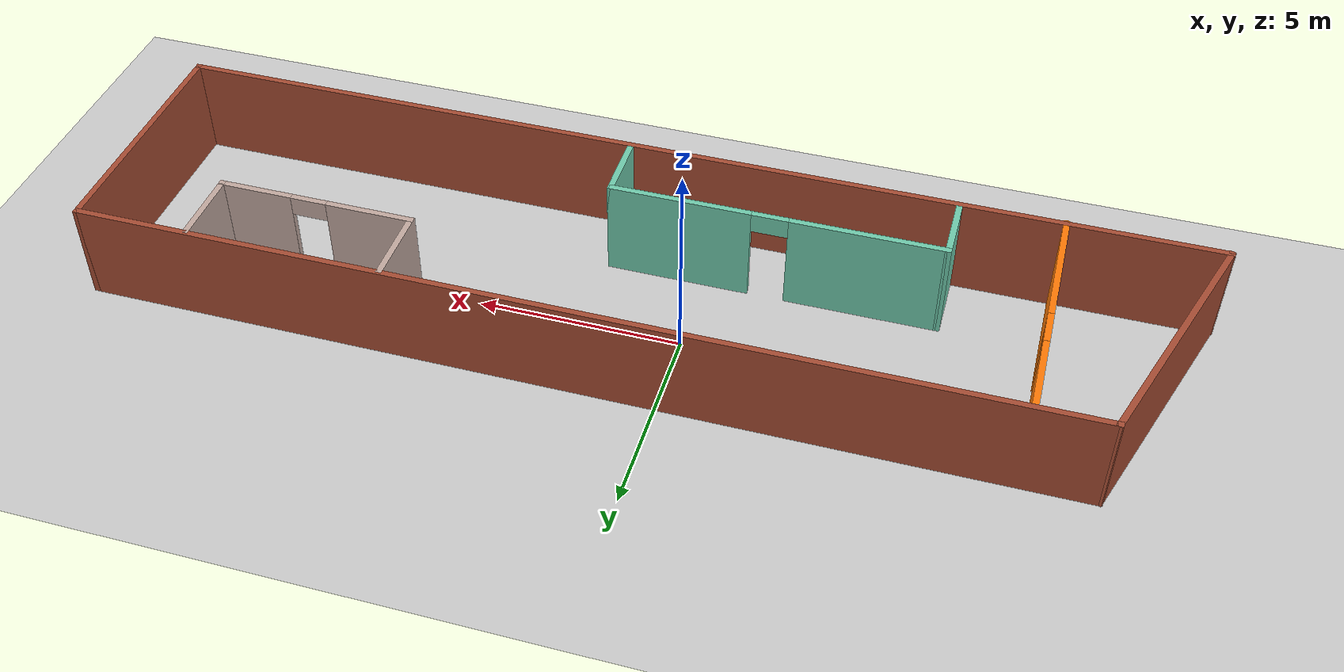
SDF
<sdf version="1.7">
 <world name="default">
  <light name="sun" type="directional">
   <pose>0 0 10 0 -0 0</pose>
   <diffuse>0.8 0.8 0.8 1</diffuse>
   <specular>0.2 0.2 0.2 1</specular>
   <attenuation>
    <range>1000</range>
    <constant>0.9</constant>
    <linear>0.01</linear>
    <quadratic>0.001</quadratic>
   </attenuation>
   <direction>-0.5 0.1 -0.9</direction>
   <spot><inner_angle>0</inner_angle><outer_angle>0</outer_angle><falloff>0</falloff></spot>
  </light>
  <model name="ground_plane">
   <static>1</static>
   <link name="link">
    <collision name="collision">
     <geometry><plane><normal>0 0 1</normal><size>100 100</size></plane></geometry>
     <surface>
      <contact><collide_bitmask>65535</collide_bitmask></contact>
      <friction><ode><mu>100</mu><mu2>50</mu2></ode></friction>
     </surface>
    </collision>
    <visual name="visual">
     <cast_shadows>0</cast_shadows>
     <geometry><plane><normal>0 0 1</normal><size>100 100</size></plane></geometry>
     <material>
      <script><uri>file://media/materials/scripts/gazebo.material</uri><name>Gazebo/Grey</name></script>
     </material>
    </visual>
   </link>
  </model>
  <gravity>0 0 -9.8</gravity>
  <magnetic_field>6e-06 2.3e-05 -4.2e-05</magnetic_field>
  <atmosphere type="adiabatic"/>
  <physics type="ode">
   <max_step_size>0.001</max_step_size>
   <real_time_factor>1</real_time_factor>
   <real_time_update_rate>1000</real_time_update_rate>
  </physics>
  <scene><ambient>0.4 0.4 0.4 1</ambient><background>0.7 0.7 0.7 1</background><shadows>1</shadows></scene>
  <spherical_coordinates>
   <surface_model>EARTH_WGS84</surface_model>
   <latitude_deg>0</latitude_deg>
   <longitude_deg>0</longitude_deg>
   <elevation>0</elevation>
   <heading_deg>0</heading_deg>
  </spherical_coordinates>
  <model name="Untitled">
   <pose>1.08545 0.084116 0 0 -0 0</pose>
   <link name="Wall_0">
    <collision name="Wall_0_Collision">
     <geometry><box><size>24.25 0.15 2.5</size></box></geometry>
     <pose>0 0 1.25 0 -0 0</pose>
    </collision>
    <visual name="Wall_0_Visual">
     <pose>0 0 1.25 0 -0 0</pose>
     <geometry><box><size>24.25 0.15 2.5</size></box></geometry>
     <material>
      <script><uri>file://media/materials/scripts/gazebo.material</uri><name>Gazebo/Bricks</name></script>
      <ambient>1 1 1 1</ambient>
     </material>
     <meta><layer>0</layer></meta>
    </visual>
    <pose>1.00982 2.0525 0 0 -0 0</pose>
   </link>
   <link name="Wall_1">
    <collision name="Wall_1_Collision">
     <geometry><box><size>6.25 0.15 2.5</size></box></geometry>
     <pose>0 0 1.25 0 -0 0</pose>
    </collision>
    <visual name="Wall_1_Visual">
     <pose>0 0 1.25 0 -0 0</pose>
     <geometry><box><size>6.25 0.15 2.5</size></box></geometry>
     <material>
      <script><uri>file://media/materials/scripts/gazebo.material</uri><name>Gazebo/Bricks</name></script>
      <ambient>1 1 1 1</ambient>
     </material>
     <meta><layer>0</layer></meta>
    </visual>
    <pose>13.0598 -0.9975 0 0 -0 -1.5708</pose>
   </link>
   <link name="Wall_10">
    <pose>7.83482 0.1425 0 0 -0 0</pose>
    <visual name="Wall_10_Visual_0">
     <pose>-1.3925 0 1.25 0 -0 0</pose>
     <geometry><box><size>2.215 0.15 2.5</size></box></geometry>
     <material>
      <script><uri>file://media/materials/scripts/gazebo.material</uri><name>Gazebo/Grey</name></script>
      <ambient>0.760784 0.662745 0.627451 1</ambient>
     </material>
     <meta><layer>0</layer></meta>
    </visual>
    <collision name="Wall_10_Collision_0">
     <geometry><box><size>2.215 0.15 2.5</size></box></geometry>
     <pose>-1.3925 0 1.25 0 -0 0</pose>
    </collision>
    <visual name="Wall_10_Visual_1">
     <pose>1.5575 0 1.25 0 -0 0</pose>
     <geometry><box><size>1.885 0.15 2.5</size></box></geometry>
     <material>
      <script><uri>file://media/materials/scripts/gazebo.material</uri><name>Gazebo/Grey</name></script>
      <ambient>0.760784 0.662745 0.627451 1</ambient>
     </material>
     <meta><layer>0</layer></meta>
    </visual>
    <collision name="Wall_10_Collision_1">
     <geometry><box><size>1.885 0.15 2.5</size></box></geometry>
     <pose>1.5575 0 1.25 0 -0 0</pose>
    </collision>
    <visual name="Wall_10_Visual_2">
     <pose>0.165 0 2.25 0 -0 0</pose>
     <geometry><box><size>0.9 0.15 0.5</size></box></geometry>
     <material>
      <script><uri>file://media/materials/scripts/gazebo.material</uri><name>Gazebo/Grey</name></script>
      <ambient>0.760784 0.662745 0.627451 1</ambient>
     </material>
     <meta><layer>0</layer></meta>
    </visual>
    <collision name="Wall_10_Collision_2">
     <geometry><box><size>0.9 0.15 0.5</size></box></geometry>
     <pose>0.165 0 2.25 0 -0 0</pose>
    </collision>
   </link>
   <link name="Wall_11">
    <collision name="Wall_11_Collision">
     <geometry><box><size>2 0.15 2.5</size></box></geometry>
     <pose>0 0 1.25 0 -0 0</pose>
    </collision>
    <visual name="Wall_11_Visual">
     <pose>0 0 1.25 0 -0 0</pose>
     <geometry><box><size>2 0.15 2.5</size></box></geometry>
     <material>
      <script><uri>file://media/materials/scripts/gazebo.material</uri><name>Gazebo/Grey</name></script>
      <ambient>0.760784 0.662745 0.627451 1</ambient>
     </material>
     <meta><layer>0</layer></meta>
    </visual>
    <pose>10.2598 1.0675 0 0 -0 1.5708</pose>
   </link>
   <link name="Wall_13">
    <pose>-9.30018 -1.0275 0 0 -0 -1.5708</pose>
    <visual name="Wall_13_Visual_0">
     <pose>-2.0825 0 1.25 0 -0 0</pose>
     <geometry><box><size>2.085 0.15 2.5</size></box></geometry>
     <material>
      <script><uri>file://media/materials/scripts/gazebo.material</uri><name>Gazebo/Grey</name></script>
      <ambient>0.996078 0.47451 0.0196078 1</ambient>
     </material>
     <meta><layer>0</layer></meta>
    </visual>
    <collision name="Wall_13_Collision_0">
     <geometry><box><size>2.085 0.15 2.5</size></box></geometry>
     <pose>-2.0825 0 1.25 0 -0 0</pose>
    </collision>
    <visual name="Wall_13_Visual_1">
     <pose>1.4925 0 1.25 0 -0 0</pose>
     <geometry><box><size>3.265 0.15 2.5</size></box></geometry>
     <material>
      <script><uri>file://media/materials/scripts/gazebo.material</uri><name>Gazebo/Grey</name></script>
      <ambient>0.996078 0.47451 0.0196078 1</ambient>
     </material>
     <meta><layer>0</layer></meta>
    </visual>
    <collision name="Wall_13_Collision_1">
     <geometry><box><size>3.265 0.15 2.5</size></box></geometry>
     <pose>1.4925 0 1.25 0 -0 0</pose>
    </collision>
    <visual name="Wall_13_Visual_2">
     <pose>-0.59 0 2.25 0 -0 0</pose>
     <geometry><box><size>0.9 0.15 0.5</size></box></geometry>
     <material>
      <script><uri>file://media/materials/scripts/gazebo.material</uri><name>Gazebo/Grey</name></script>
      <ambient>0.996078 0.47451 0.0196078 1</ambient>
     </material>
     <meta><layer>0</layer></meta>
    </visual>
    <collision name="Wall_13_Collision_2">
     <geometry><box><size>0.9 0.15 0.5</size></box></geometry>
     <pose>-0.59 0 2.25 0 -0 0</pose>
    </collision>
   </link>
   <link name="Wall_2">
    <collision name="Wall_2_Collision">
     <geometry><box><size>26.25 0.15 2.5</size></box></geometry>
     <pose>0 0 1.25 0 -0 0</pose>
    </collision>
    <visual name="Wall_2_Visual">
     <pose>0 0 1.25 0 -0 0</pose>
     <geometry><box><size>26.25 0.15 2.5</size></box></geometry>
     <material>
      <script><uri>file://media/materials/scripts/gazebo.material</uri><name>Gazebo/Bricks</name></script>
      <ambient>1 1 1 1</ambient>
     </material>
     <meta><layer>0</layer></meta>
    </visual>
    <pose>0.009816 -4.0475 0 0 -0 3.14159</pose>
   </link>
   <link name="Wall_3">
    <collision name="Wall_3_Collision">
     <geometry><box><size>6.5695 0.15 2.5</size></box></geometry>
     <pose>0 0 1.25 0 -0 0</pose>
    </collision>
    <visual name="Wall_3_Visual">
     <pose>0 0 1.25 0 -0 0</pose>
     <geometry><box><size>6.5695 0.15 2.5</size></box></geometry>
     <material>
      <script><uri>file://media/materials/scripts/gazebo.material</uri><name>Gazebo/Bricks</name></script>
      <ambient>1 1 1 1</ambient>
     </material>
     <meta><layer>0</layer></meta>
    </visual>
    <pose>-12.0402 -0.9975 0 0 -0 1.25397</pose>
   </link>
   <link name="Wall_5">
    <collision name="Wall_5_Collision">
     <geometry><box><size>1.75 0.15 2.5</size></box></geometry>
     <pose>0 0 1.25 0 -0 0</pose>
    </collision>
    <visual name="Wall_5_Visual">
     <pose>0 0 1.25 0 -0 0</pose>
     <geometry><box><size>1.75 0.15 2.5</size></box></geometry>
     <material>
      <script><uri>file://media/materials/scripts/gazebo.material</uri><name>Gazebo/Grey</name></script>
      <ambient>0.435294 0.796078 0.67451 1</ambient>
     </material>
     <meta><layer>0</layer></meta>
    </visual>
    <pose>-6.81018 -3.1375 0 0 -0 1.5708</pose>
   </link>
   <link name="Wall_6">
    <pose>-2.76018 -2.3375 0 0 -0 0</pose>
    <visual name="Wall_6_Visual_0">
     <pose>-2.2175 0 1.25 0 -0 0</pose>
     <geometry><box><size>3.815 0.15 2.5</size></box></geometry>
     <material>
      <script><uri>file://media/materials/scripts/gazebo.material</uri><name>Gazebo/Grey</name></script>
      <ambient>0.435294 0.796078 0.67451 1</ambient>
     </material>
     <meta><layer>0</layer></meta>
    </visual>
    <collision name="Wall_6_Collision_0">
     <geometry><box><size>3.815 0.15 2.5</size></box></geometry>
     <pose>-2.2175 0 1.25 0 -0 0</pose>
    </collision>
    <visual name="Wall_6_Visual_1">
     <pose>2.3575 0 1.25 0 -0 0</pose>
     <geometry><box><size>3.535 0.15 2.5</size></box></geometry>
     <material>
      <script><uri>file://media/materials/scripts/gazebo.material</uri><name>Gazebo/Grey</name></script>
      <ambient>0.435294 0.796078 0.67451 1</ambient>
     </material>
     <meta><layer>0</layer></meta>
    </visual>
    <collision name="Wall_6_Collision_1">
     <geometry><box><size>3.535 0.15 2.5</size></box></geometry>
     <pose>2.3575 0 1.25 0 -0 0</pose>
    </collision>
    <visual name="Wall_6_Visual_2">
     <pose>0.14 0 2.25 0 -0 0</pose>
     <geometry><box><size>0.9 0.15 0.5</size></box></geometry>
     <material>
      <script><uri>file://media/materials/scripts/gazebo.material</uri><name>Gazebo/Grey</name></script>
      <ambient>0.435294 0.796078 0.67451 1</ambient>
     </material>
     <meta><layer>0</layer></meta>
    </visual>
    <collision name="Wall_6_Collision_2">
     <geometry><box><size>0.9 0.15 0.5</size></box></geometry>
     <pose>0.14 0 2.25 0 -0 0</pose>
    </collision>
   </link>
   <link name="Wall_7">
    <collision name="Wall_7_Collision">
     <geometry><box><size>1.75 0.15 2.5</size></box></geometry>
     <pose>0 0 1.25 0 -0 0</pose>
    </collision>
    <visual name="Wall_7_Visual">
     <pose>0 0 1.25 0 -0 0</pose>
     <geometry><box><size>1.75 0.15 2.5</size></box></geometry>
     <material>
      <script><uri>file://media/materials/scripts/gazebo.material</uri><name>Gazebo/Grey</name></script>
      <ambient>0.435294 0.796078 0.67451 1</ambient>
     </material>
     <meta><layer>0</layer></meta>
    </visual>
    <pose>1.28982 -3.1375 0 0 -0 -1.5708</pose>
   </link>
   <link name="Wall_9">
    <collision name="Wall_9_Collision">
     <geometry><box><size>2 0.15 2.5</size></box></geometry>
     <pose>0 0 1.25 0 -0 0</pose>
    </collision>
    <visual name="Wall_9_Visual">
     <pose>0 0 1.25 0 -0 0</pose>
     <geometry><box><size>2 0.15 2.5</size></box></geometry>
     <material>
      <script><uri>file://media/materials/scripts/gazebo.material</uri><name>Gazebo/Grey</name></script>
      <ambient>0.760784 0.662745 0.627451 1</ambient>
     </material>
     <meta><layer>0</layer></meta>
    </visual>
    <pose>5.40982 1.0675 0 0 -0 -1.5708</pose>
   </link>
   <static>1</static>
  </model>
 </world>
</sdf>
